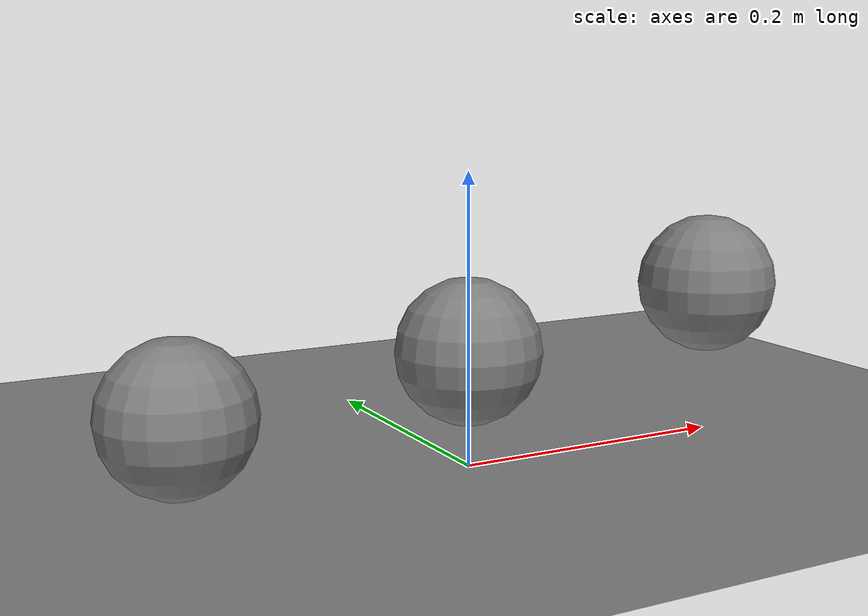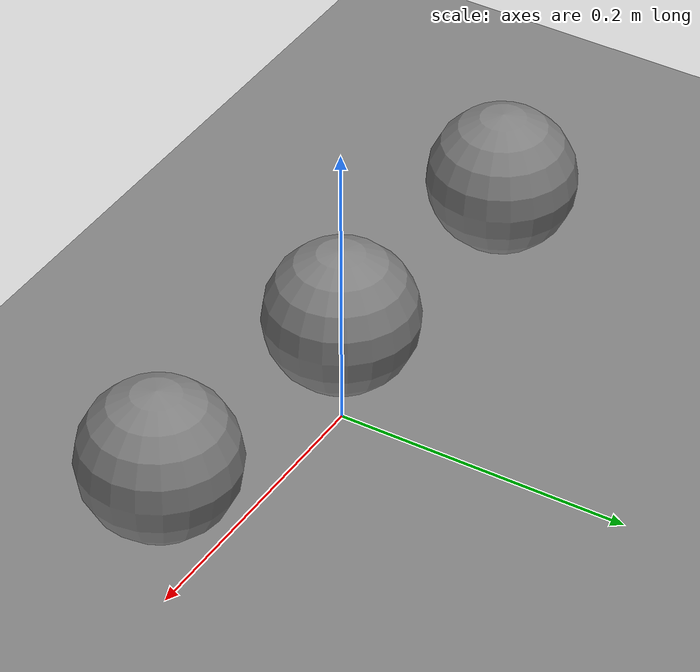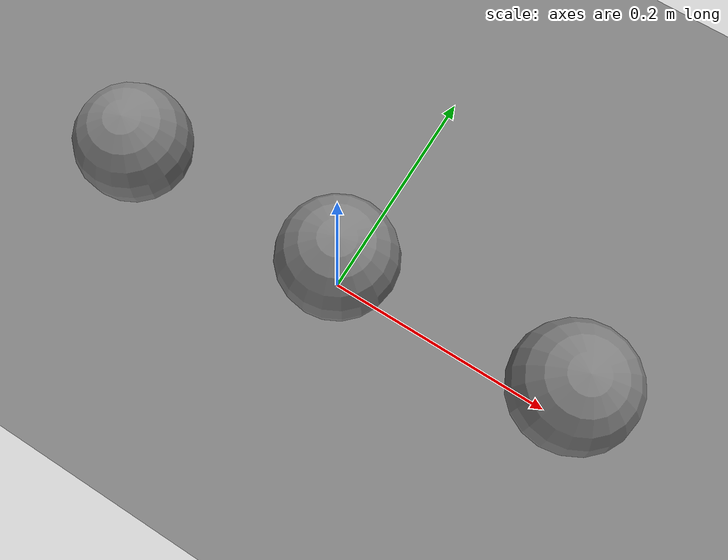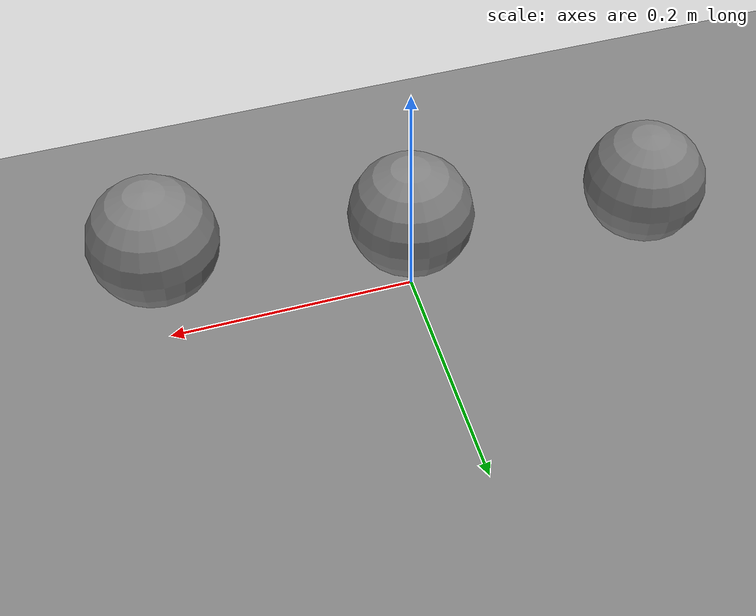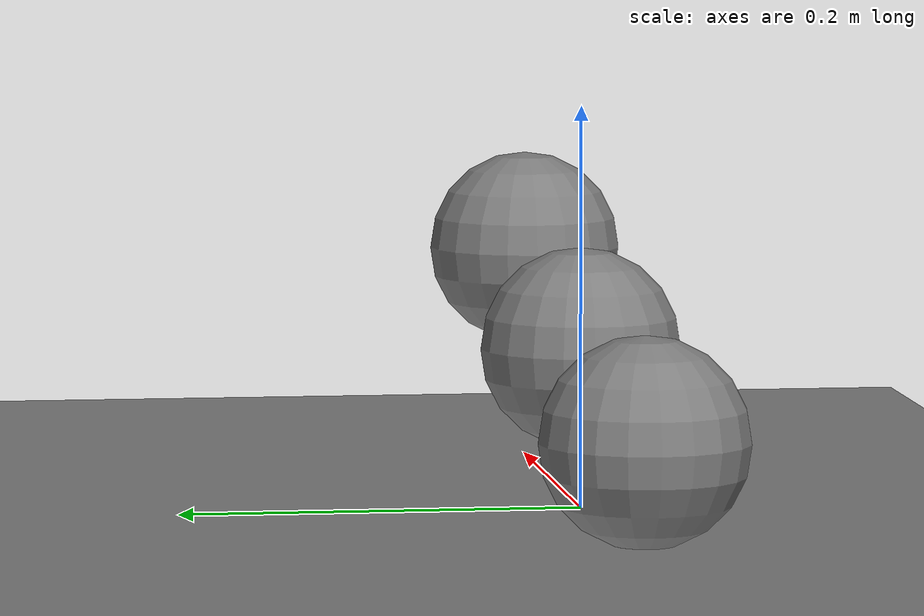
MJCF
<mujoco model="margin-gap">
          <option gravity="0 0 -9.81" timestep="0.001" solver="Newton"
                  iterations="50" tolerance="1e-10"/>

          <worldbody>
            <geom name="ground" type="plane" size="5 5 0.01"/>

            <!-- Zero margin: rests at surface -->
            <body name="zero" pos="-0.2 0 0.06">
              <freejoint/>
              <geom name="g_zero" type="sphere" size="0.05" mass="0.5"/>
            </body>

            <!-- margin=0.02: floats ~20mm above surface -->
            <body name="mid" pos="0 0 0.08">
              <freejoint/>
              <geom name="g_mid" type="sphere" size="0.05" mass="0.5"
                    margin="0.02"/>
            </body>

            <!-- margin=0.05: floats ~50mm above surface -->
            <body name="high" pos="0.2 0 0.11">
              <freejoint/>
              <geom name="g_high" type="sphere" size="0.05" mass="0.5"
                    margin="0.05"/>
            </body>
          </worldbody>
        </mujoco>
